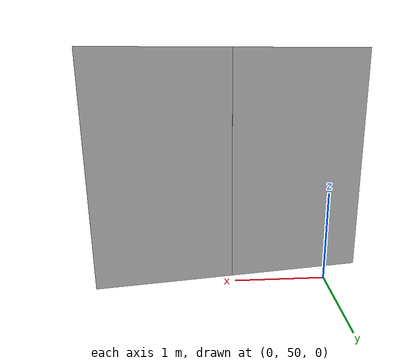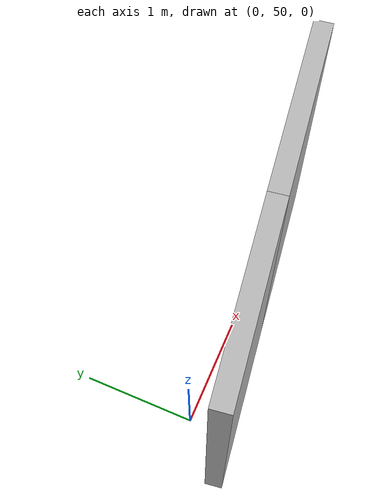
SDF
<?xml version="1.0" ?>
<sdf version="1.6">
  <model name="sps_2146">
    <pose frame="">0 0 0 0 -0 0</pose>
    <static>1</static>
    <self_collide>0</self_collide>
    <allow_auto_disable>0</allow_auto_disable>
    <link name="Wall7642">
      <kinematic>0</kinematic>
      <gravity>1</gravity>
      <self_collide>0</self_collide>
      <collision name="collision">
        <geometry>
          <box>
            <size>1.49599 0.15 2.5</size>
          </box>
        </geometry>
        <pose frame="">0 0 0 0 -0 0</pose>
      </collision>
      <visual name="visual">
        <geometry>
          <box>
            <size>1.49599 0.15 2.5</size>
          </box>
        </geometry>
        <pose frame="">0 0 0 0 -0 0</pose>
        <cast_shadows>1</cast_shadows>
        <transparency>0.0</transparency>
      </visual>
      <pose frame="">1.77965 49.9047 1.25 0 0 -3.00292</pose>
    </link>
    <link name="Wall7643">
      <kinematic>0</kinematic>
      <gravity>1</gravity>
      <self_collide>0</self_collide>
      <collision name="collision">
        <geometry>
          <box>
            <size>1.49593 0.15 2.5</size>
          </box>
        </geometry>
        <pose frame="">0 0 0 0 -0 0</pose>
      </collision>
      <visual name="visual">
        <geometry>
          <box>
            <size>1.49593 0.15 2.5</size>
          </box>
        </geometry>
        <pose frame="">0 0 0 0 -0 0</pose>
        <cast_shadows>1</cast_shadows>
        <transparency>0.0</transparency>
      </visual>
      <pose frame="">0.29824 49.6966 1.25 0 0 -3.00114</pose>
    </link>
  </model>
</sdf>
